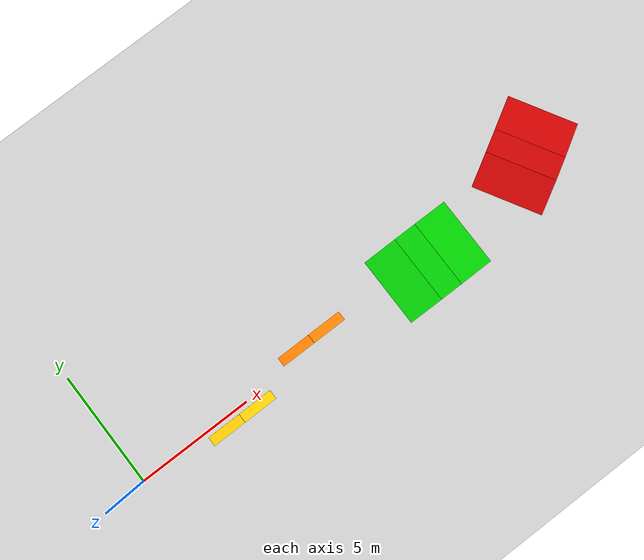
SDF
<?xml version="1.0" ?>
<sdf version="1.7">
  <world name="custom_parkour">
    <light type="directional" name="sun">
      <cast_shadows>true</cast_shadows>
      <pose>0 0 10 0 0 0</pose>
      <diffuse>0.8 0.8 0.8 1</diffuse>
      <specular>0.2 0.2 0.2 1</specular>
      <direction>-0.5 0.1 -0.9</direction>
    </light>

    <model name="ground_plane">
      <static>true</static>
      <link name="link">
        <collision name="collision">
          <geometry><plane><normal>0 0 1</normal><size>100 100</size></plane></geometry>
        </collision>
        <visual name="visual">
          <geometry><plane><normal>0 0 1</normal><size>100 100</size></plane></geometry>
          <material><ambient>0.8 0.8 0.8 1</ambient><diffuse>0.8 0.8 0.8 1</diffuse></material>
        </visual>
      </link>
    </model>

    <model name='roll_right_bump'>
      <static>true</static>
      <pose>3.0 -0.4 -0.05 0 0 0.0</pose>

        <link name='up_link'>
          <pose>0.7483314773547883 0 0.05 0 -0.06671614841022526 0</pose>
          <collision name='up_col'><geometry><box><size>1.5 0.4 0.1</size></box></geometry></collision>
          <visual name='up_vis'>
            <geometry><box><size>1.5 0.4 0.1</size></box></geometry>
            <material><ambient>1.0 0.8 0.0 1</ambient><diffuse>1.0 0.8 0.0 1</diffuse></material>
          </visual>
        </link>

        <link name='down_link'>
          <pose>2.244994432064365 0 0.05 0 0.06671614841022526 0</pose>
          <collision name='down_col'><geometry><box><size>1.5 0.4 0.1</size></box></geometry></collision>
          <visual name='down_vis'>
            <geometry><box><size>1.5 0.4 0.1</size></box></geometry>
            <material><ambient>1.0 0.8 0.0 1</ambient><diffuse>1.0 0.8 0.0 1</diffuse></material>
          </visual>
        </link>

    </model>

    <model name='roll_left_bump'>
      <static>true</static>
      <pose>7.0 0.4 -0.05 0 0 0.0</pose>

        <link name='up_link'>
          <pose>0.7483314773547883 0 0.05 0 -0.06671614841022526 0</pose>
          <collision name='up_col'><geometry><box><size>1.5 0.4 0.1</size></box></geometry></collision>
          <visual name='up_vis'>
            <geometry><box><size>1.5 0.4 0.1</size></box></geometry>
            <material><ambient>1.0 0.5 0.0 1</ambient><diffuse>1.0 0.5 0.0 1</diffuse></material>
          </visual>
        </link>

        <link name='down_link'>
          <pose>2.244994432064365 0 0.05 0 0.06671614841022526 0</pose>
          <collision name='down_col'><geometry><box><size>1.5 0.4 0.1</size></box></geometry></collision>
          <visual name='down_vis'>
            <geometry><box><size>1.5 0.4 0.1</size></box></geometry>
            <material><ambient>1.0 0.5 0.0 1</ambient><diffuse>1.0 0.5 0.0 1</diffuse></material>
          </visual>
        </link>

    </model>

    <model name='pitch_ramp'>
      <static>true</static>
      <pose>12.0 0.0 -0.05 0 0 0.0</pose>

        <link name='up_link'>
          <pose>0.7475961476626267 0 0.06 0 -0.08008558003365901 0</pose>
          <collision name='up_col'><geometry><box><size>1.5 3.0 0.1</size></box></geometry></collision>
          <visual name='up_vis'>
            <geometry><box><size>1.5 3.0 0.1</size></box></geometry>
            <material><ambient>0.0 0.8 0.0 1</ambient><diffuse>0.0 0.8 0.0 1</diffuse></material>
          </visual>
        </link>

        <link name='flat_link'>
          <pose>1.9951922953252534 0 0.12 0 0 0</pose>
          <collision name='flat_col'><geometry><box><size>1.0 3.0 0.1</size></box></geometry></collision>
          <visual name='flat_vis'>
            <geometry><box><size>1.0 3.0 0.1</size></box></geometry>
            <material><ambient>0.0 0.8 0.0 1</ambient><diffuse>0.0 0.8 0.0 1</diffuse></material>
          </visual>
        </link>

        <link name='down_link'>
          <pose>3.24278844298788 0 0.06 0 0.08008558003365901 0</pose>
          <collision name='down_col'><geometry><box><size>1.5 3.0 0.1</size></box></geometry></collision>
          <visual name='down_vis'>
            <geometry><box><size>1.5 3.0 0.1</size></box></geometry>
            <material><ambient>0.0 0.8 0.0 1</ambient><diffuse>0.0 0.8 0.0 1</diffuse></material>
          </visual>
        </link>

    </model>

    <model name='combined_ramp'>
      <static>true</static>
      <pose>18.0 0.0 -0.05 0 0 0.5235</pose>

        <link name='up_link'>
          <pose>0.7475961476626267 0 0.06 0 -0.08008558003365901 0</pose>
          <collision name='up_col'><geometry><box><size>1.5 3.0 0.1</size></box></geometry></collision>
          <visual name='up_vis'>
            <geometry><box><size>1.5 3.0 0.1</size></box></geometry>
            <material><ambient>0.8 0.0 0.0 1</ambient><diffuse>0.8 0.0 0.0 1</diffuse></material>
          </visual>
        </link>

        <link name='flat_link'>
          <pose>1.9951922953252534 0 0.12 0 0 0</pose>
          <collision name='flat_col'><geometry><box><size>1.0 3.0 0.1</size></box></geometry></collision>
          <visual name='flat_vis'>
            <geometry><box><size>1.0 3.0 0.1</size></box></geometry>
            <material><ambient>0.8 0.0 0.0 1</ambient><diffuse>0.8 0.0 0.0 1</diffuse></material>
          </visual>
        </link>

        <link name='down_link'>
          <pose>3.24278844298788 0 0.06 0 0.08008558003365901 0</pose>
          <collision name='down_col'><geometry><box><size>1.5 3.0 0.1</size></box></geometry></collision>
          <visual name='down_vis'>
            <geometry><box><size>1.5 3.0 0.1</size></box></geometry>
            <material><ambient>0.8 0.0 0.0 1</ambient><diffuse>0.8 0.0 0.0 1</diffuse></material>
          </visual>
        </link>

    </model>

  </world>
</sdf>
